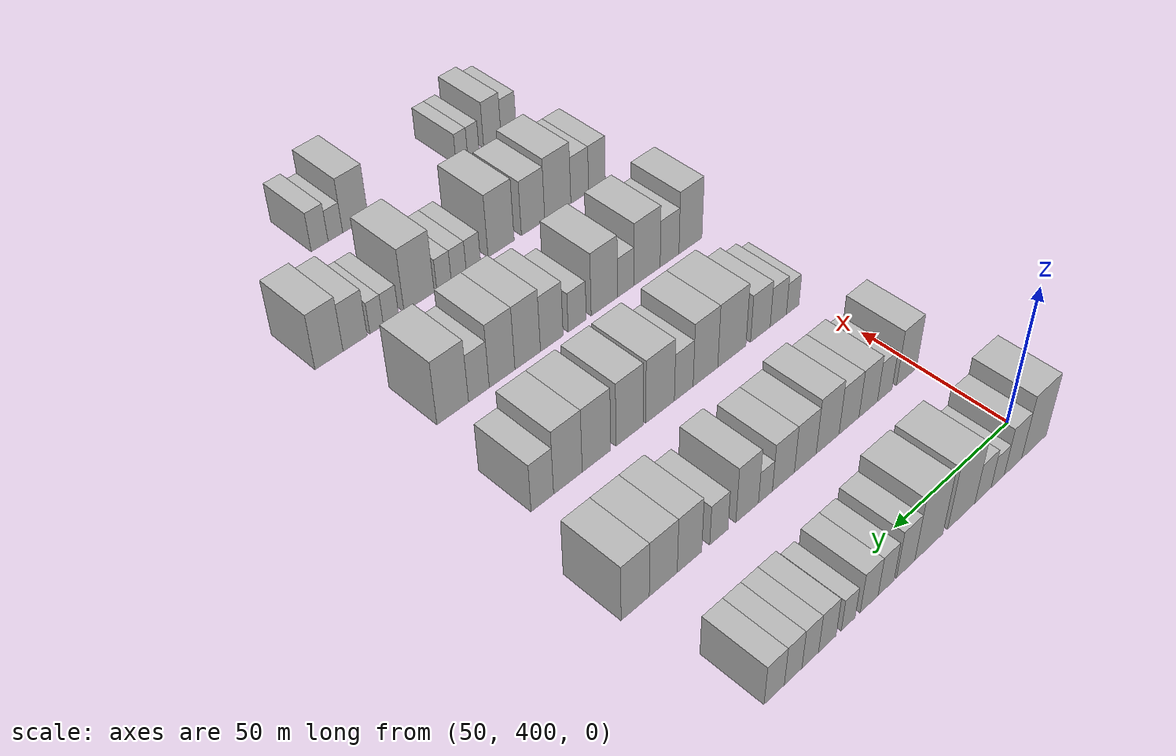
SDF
<sdf version="1.6">
 <world name="default">
  <model name="building_118">
   <static>1</static>
   <pose>50.0000 402.5049 0 0.000000 0.000000 0.000000</pose>
   <link name="link">
    <pose>0 0 12.00 0 0 0</pose>
    <collision name="collision"><geometry><box><size>20.0000 11.5535 24.0000</size></box></geometry></collision>
    <visual name="visual">
     <cast_shadows>0</cast_shadows>
     <geometry><box><size>20.0000 11.5535 24.0000</size></box></geometry>
     <material>
      <script>
       <uri>model://HANNAS_wall/materials/scripts</uri>
       <uri>model://HANNAS_wall/materials/textures</uri>
       <name>vrc/HANNAS_wall</name>
      </script>
     </material>
    </visual>
   </link>
  </model>
  <model name="building_119">
   <static>1</static>
   <pose>50.0000 412.2310 0 0.000000 0.000000 0.000000</pose>
   <link name="link">
    <pose>0 0 9.00 0 0 0</pose>
    <collision name="collision"><geometry><box><size>20.0000 7.8986 18.0000</size></box></geometry></collision>
    <visual name="visual">
     <cast_shadows>0</cast_shadows>
     <geometry><box><size>20.0000 7.8986 18.0000</size></box></geometry>
     <material>
      <script>
       <uri>model://HANNAS_wall/materials/scripts</uri>
       <uri>model://HANNAS_wall/materials/textures</uri>
       <name>vrc/HANNAS_wall</name>
      </script>
     </material>
    </visual>
   </link>
  </model>
  <model name="building_120">
   <static>1</static>
   <pose>50.0000 419.1569 0 0.000000 0.000000 0.000000</pose>
   <link name="link">
    <pose>0 0 6.00 0 0 0</pose>
    <collision name="collision"><geometry><box><size>20.0000 5.9532 12.0000</size></box></geometry></collision>
    <visual name="visual">
     <cast_shadows>0</cast_shadows>
     <geometry><box><size>20.0000 5.9532 12.0000</size></box></geometry>
     <material>
      <script>
       <uri>model://HANNAS_wall/materials/scripts</uri>
       <uri>model://HANNAS_wall/materials/textures</uri>
       <name>vrc/HANNAS_wall</name>
      </script>
     </material>
    </visual>
   </link>
  </model>
  <model name="building_121">
   <static>1</static>
   <pose>50.0000 425.7080 0 0.000000 0.000000 0.000000</pose>
   <link name="link">
    <pose>0 0 7.50 0 0 0</pose>
    <collision name="collision"><geometry><box><size>20.0000 7.1492 15.0000</size></box></geometry></collision>
    <visual name="visual">
     <cast_shadows>0</cast_shadows>
     <geometry><box><size>20.0000 7.1492 15.0000</size></box></geometry>
     <material>
      <script>
       <uri>model://HANNAS_wall/materials/scripts</uri>
       <uri>model://HANNAS_wall/materials/textures</uri>
       <name>vrc/HANNAS_wall</name>
      </script>
     </material>
    </visual>
   </link>
  </model>
  <model name="building_122">
   <static>1</static>
   <pose>50.0000 435.1717 0 0.000000 0.000000 0.000000</pose>
   <link name="link">
    <pose>0 0 12.00 0 0 0</pose>
    <collision name="collision"><geometry><box><size>20.0000 11.7782 24.0000</size></box></geometry></collision>
    <visual name="visual">
     <cast_shadows>0</cast_shadows>
     <geometry><box><size>20.0000 11.7782 24.0000</size></box></geometry>
     <material>
      <script>
       <uri>model://HANNAS_wall/materials/scripts</uri>
       <uri>model://HANNAS_wall/materials/textures</uri>
       <name>vrc/HANNAS_wall</name>
      </script>
     </material>
    </visual>
   </link>
  </model>
  <model name="building_123">
   <static>1</static>
   <pose>50.0000 448.9444 0 0.000000 0.000000 0.000000</pose>
   <link name="link">
    <pose>0 0 12.00 0 0 0</pose>
    <collision name="collision"><geometry><box><size>20.0000 11.7671 24.0000</size></box></geometry></collision>
    <visual name="visual">
     <cast_shadows>0</cast_shadows>
     <geometry><box><size>20.0000 11.7671 24.0000</size></box></geometry>
     <material>
      <script>
       <uri>model://HANNAS_wall/materials/scripts</uri>
       <uri>model://HANNAS_wall/materials/textures</uri>
       <name>vrc/HANNAS_wall</name>
      </script>
     </material>
    </visual>
   </link>
  </model>
  <model name="building_124">
   <static>1</static>
   <pose>50.0000 458.5396 0 0.000000 0.000000 0.000000</pose>
   <link name="link">
    <pose>0 0 9.00 0 0 0</pose>
    <collision name="collision"><geometry><box><size>20.0000 7.4233 18.0000</size></box></geometry></collision>
    <visual name="visual">
     <cast_shadows>0</cast_shadows>
     <geometry><box><size>20.0000 7.4233 18.0000</size></box></geometry>
     <material>
      <script>
       <uri>model://HANNAS_wall/materials/scripts</uri>
       <uri>model://HANNAS_wall/materials/textures</uri>
       <name>vrc/HANNAS_wall</name>
      </script>
     </material>
    </visual>
   </link>
  </model>
  <model name="building_125">
   <static>1</static>
   <pose>50.0000 466.4341 0 0.000000 0.000000 0.000000</pose>
   <link name="link">
    <pose>0 0 7.50 0 0 0</pose>
    <collision name="collision"><geometry><box><size>20.0000 6.3659 15.0000</size></box></geometry></collision>
    <visual name="visual">
     <cast_shadows>0</cast_shadows>
     <geometry><box><size>20.0000 6.3659 15.0000</size></box></geometry>
     <material>
      <script>
       <uri>model://HANNAS_wall/materials/scripts</uri>
       <uri>model://HANNAS_wall/materials/textures</uri>
       <name>vrc/HANNAS_wall</name>
      </script>
     </material>
    </visual>
   </link>
  </model>
  <model name="building_126">
   <static>1</static>
   <pose>50.0000 473.1034 0 0.000000 0.000000 0.000000</pose>
   <link name="link">
    <pose>0 0 7.50 0 0 0</pose>
    <collision name="collision"><geometry><box><size>20.0000 6.9726 15.0000</size></box></geometry></collision>
    <visual name="visual">
     <cast_shadows>0</cast_shadows>
     <geometry><box><size>20.0000 6.9726 15.0000</size></box></geometry>
     <material>
      <script>
       <uri>model://HANNAS_wall/materials/scripts</uri>
       <uri>model://HANNAS_wall/materials/textures</uri>
       <name>vrc/HANNAS_wall</name>
      </script>
     </material>
    </visual>
   </link>
  </model>
  <model name="building_127">
   <static>1</static>
   <pose>50.0000 481.2409 0 0.000000 0.000000 0.000000</pose>
   <link name="link">
    <pose>0 0 6.00 0 0 0</pose>
    <collision name="collision"><geometry><box><size>20.0000 5.3024 12.0000</size></box></geometry></collision>
    <visual name="visual">
     <cast_shadows>0</cast_shadows>
     <geometry><box><size>20.0000 5.3024 12.0000</size></box></geometry>
     <material>
      <script>
       <uri>model://HANNAS_wall/materials/scripts</uri>
       <uri>model://HANNAS_wall/materials/textures</uri>
       <name>vrc/HANNAS_wall</name>
      </script>
     </material>
    </visual>
   </link>
  </model>
  <model name="building_128">
   <static>1</static>
   <pose>50.0000 489.1842 0 0.000000 0.000000 0.000000</pose>
   <link name="link">
    <pose>0 0 7.50 0 0 0</pose>
    <collision name="collision"><geometry><box><size>20.0000 6.5843 15.0000</size></box></geometry></collision>
    <visual name="visual">
     <cast_shadows>0</cast_shadows>
     <geometry><box><size>20.0000 6.5843 15.0000</size></box></geometry>
     <material>
      <script>
       <uri>model://HANNAS_wall/materials/scripts</uri>
       <uri>model://HANNAS_wall/materials/textures</uri>
       <name>vrc/HANNAS_wall</name>
      </script>
     </material>
    </visual>
   </link>
  </model>
  <model name="building_129">
   <static>1</static>
   <pose>50.0000 495.5523 0 0.000000 0.000000 0.000000</pose>
   <link name="link">
    <pose>0 0 7.50 0 0 0</pose>
    <collision name="collision"><geometry><box><size>20.0000 6.1518 15.0000</size></box></geometry></collision>
    <visual name="visual">
     <cast_shadows>0</cast_shadows>
     <geometry><box><size>20.0000 6.1518 15.0000</size></box></geometry>
     <material>
      <script>
       <uri>model://HANNAS_wall/materials/scripts</uri>
       <uri>model://HANNAS_wall/materials/textures</uri>
       <name>vrc/HANNAS_wall</name>
      </script>
     </material>
    </visual>
   </link>
  </model>
  <model name="building_130">
   <static>1</static>
   <pose>50.0000 501.8149 0 0.000000 0.000000 0.000000</pose>
   <link name="link">
    <pose>0 0 7.50 0 0 0</pose>
    <collision name="collision"><geometry><box><size>20.0000 6.3734 15.0000</size></box></geometry></collision>
    <visual name="visual">
     <cast_shadows>0</cast_shadows>
     <geometry><box><size>20.0000 6.3734 15.0000</size></box></geometry>
     <material>
      <script>
       <uri>model://HANNAS_wall/materials/scripts</uri>
       <uri>model://HANNAS_wall/materials/textures</uri>
       <name>vrc/HANNAS_wall</name>
      </script>
     </material>
    </visual>
   </link>
  </model>
  <model name="building_131">
   <static>1</static>
   <pose>50.0000 508.6024 0 0.000000 0.000000 0.000000</pose>
   <link name="link">
    <pose>0 0 7.50 0 0 0</pose>
    <collision name="collision"><geometry><box><size>20.0000 7.2016 15.0000</size></box></geometry></collision>
    <visual name="visual">
     <cast_shadows>0</cast_shadows>
     <geometry><box><size>20.0000 7.2016 15.0000</size></box></geometry>
     <material>
      <script>
       <uri>model://HANNAS_wall/materials/scripts</uri>
       <uri>model://HANNAS_wall/materials/textures</uri>
       <name>vrc/HANNAS_wall</name>
      </script>
     </material>
    </visual>
   </link>
  </model>
  <model name="building_254">
   <static>1</static>
   <pose>90.0000 405.3407 0 0.000000 0.000000 0.000000</pose>
   <link name="link">
    <pose>0 0 10.50 0 0 0</pose>
    <collision name="collision"><geometry><box><size>20.0000 9.0684 21.0000</size></box></geometry></collision>
    <visual name="visual">
     <cast_shadows>0</cast_shadows>
     <geometry><box><size>20.0000 9.0684 21.0000</size></box></geometry>
     <material>
      <script>
       <uri>model://HANNAS_wall/materials/scripts</uri>
       <uri>model://HANNAS_wall/materials/textures</uri>
       <name>vrc/HANNAS_wall</name>
      </script>
     </material>
    </visual>
   </link>
  </model>
  <model name="building_255">
   <static>1</static>
   <pose>90.0000 415.1380 0 0.000000 0.000000 0.000000</pose>
   <link name="link">
    <pose>0 0 7.50 0 0 0</pose>
    <collision name="collision"><geometry><box><size>20.0000 6.5263 15.0000</size></box></geometry></collision>
    <visual name="visual">
     <cast_shadows>0</cast_shadows>
     <geometry><box><size>20.0000 6.5263 15.0000</size></box></geometry>
     <material>
      <script>
       <uri>model://HANNAS_wall/materials/scripts</uri>
       <uri>model://HANNAS_wall/materials/textures</uri>
       <name>vrc/HANNAS_wall</name>
      </script>
     </material>
    </visual>
   </link>
  </model>
  <model name="building_256">
   <static>1</static>
   <pose>90.0000 422.4378 0 0.000000 0.000000 0.000000</pose>
   <link name="link">
    <pose>0 0 9.00 0 0 0</pose>
    <collision name="collision"><geometry><box><size>20.0000 8.0733 18.0000</size></box></geometry></collision>
    <visual name="visual">
     <cast_shadows>0</cast_shadows>
     <geometry><box><size>20.0000 8.0733 18.0000</size></box></geometry>
     <material>
      <script>
       <uri>model://HANNAS_wall/materials/scripts</uri>
       <uri>model://HANNAS_wall/materials/textures</uri>
       <name>vrc/HANNAS_wall</name>
      </script>
     </material>
    </visual>
   </link>
  </model>
  <model name="building_257">
   <static>1</static>
   <pose>90.0000 430.7644 0 0.000000 0.000000 0.000000</pose>
   <link name="link">
    <pose>0 0 9.00 0 0 0</pose>
    <collision name="collision"><geometry><box><size>20.0000 8.5798 18.0000</size></box></geometry></collision>
    <visual name="visual">
     <cast_shadows>0</cast_shadows>
     <geometry><box><size>20.0000 8.5798 18.0000</size></box></geometry>
     <material>
      <script>
       <uri>model://HANNAS_wall/materials/scripts</uri>
       <uri>model://HANNAS_wall/materials/textures</uri>
       <name>vrc/HANNAS_wall</name>
      </script>
     </material>
    </visual>
   </link>
  </model>
  <model name="building_258">
   <static>1</static>
   <pose>90.0000 439.8558 0 0.000000 0.000000 0.000000</pose>
   <link name="link">
    <pose>0 0 10.50 0 0 0</pose>
    <collision name="collision"><geometry><box><size>20.0000 9.6030 21.0000</size></box></geometry></collision>
    <visual name="visual">
     <cast_shadows>0</cast_shadows>
     <geometry><box><size>20.0000 9.6030 21.0000</size></box></geometry>
     <material>
      <script>
       <uri>model://HANNAS_wall/materials/scripts</uri>
       <uri>model://HANNAS_wall/materials/textures</uri>
       <name>vrc/HANNAS_wall</name>
      </script>
     </material>
    </visual>
   </link>
  </model>
  <model name="building_259">
   <static>1</static>
   <pose>90.0000 449.1260 0 0.000000 0.000000 0.000000</pose>
   <link name="link">
    <pose>0 0 9.00 0 0 0</pose>
    <collision name="collision"><geometry><box><size>20.0000 8.9374 18.0000</size></box></geometry></collision>
    <visual name="visual">
     <cast_shadows>0</cast_shadows>
     <geometry><box><size>20.0000 8.9374 18.0000</size></box></geometry>
     <material>
      <script>
       <uri>model://HANNAS_wall/materials/scripts</uri>
       <uri>model://HANNAS_wall/materials/textures</uri>
       <name>vrc/HANNAS_wall</name>
      </script>
     </material>
    </visual>
   </link>
  </model>
  <model name="building_260">
   <static>1</static>
   <pose>90.0000 458.0168 0 0.000000 0.000000 0.000000</pose>
   <link name="link">
    <pose>0 0 9.00 0 0 0</pose>
    <collision name="collision"><geometry><box><size>20.0000 8.8444 18.0000</size></box></geometry></collision>
    <visual name="visual">
     <cast_shadows>0</cast_shadows>
     <geometry><box><size>20.0000 8.8444 18.0000</size></box></geometry>
     <material>
      <script>
       <uri>model://HANNAS_wall/materials/scripts</uri>
       <uri>model://HANNAS_wall/materials/textures</uri>
       <name>vrc/HANNAS_wall</name>
      </script>
     </material>
    </visual>
   </link>
  </model>
  <model name="building_261">
   <static>1</static>
   <pose>90.0000 465.1957 0 0.000000 0.000000 0.000000</pose>
   <link name="link">
    <pose>0 0 6.00 0 0 0</pose>
    <collision name="collision"><geometry><box><size>20.0000 5.5133 12.0000</size></box></geometry></collision>
    <visual name="visual">
     <cast_shadows>0</cast_shadows>
     <geometry><box><size>20.0000 5.5133 12.0000</size></box></geometry>
     <material>
      <script>
       <uri>model://HANNAS_wall/materials/scripts</uri>
       <uri>model://HANNAS_wall/materials/textures</uri>
       <name>vrc/HANNAS_wall</name>
      </script>
     </material>
    </visual>
   </link>
  </model>
  <model name="building_262">
   <static>1</static>
   <pose>90.0000 472.3286 0 0.000000 0.000000 0.000000</pose>
   <link name="link">
    <pose>0 0 10.50 0 0 0</pose>
    <collision name="collision"><geometry><box><size>20.0000 8.7526 21.0000</size></box></geometry></collision>
    <visual name="visual">
     <cast_shadows>0</cast_shadows>
     <geometry><box><size>20.0000 8.7526 21.0000</size></box></geometry>
     <material>
      <script>
       <uri>model://HANNAS_wall/materials/scripts</uri>
       <uri>model://HANNAS_wall/materials/textures</uri>
       <name>vrc/HANNAS_wall</name>
      </script>
     </material>
    </visual>
   </link>
  </model>
  <model name="building_263">
   <static>1</static>
   <pose>90.0000 483.1528 0 0.000000 0.000000 0.000000</pose>
   <link name="link">
    <pose>0 0 7.50 0 0 0</pose>
    <collision name="collision"><geometry><box><size>20.0000 6.8958 15.0000</size></box></geometry></collision>
    <visual name="visual">
     <cast_shadows>0</cast_shadows>
     <geometry><box><size>20.0000 6.8958 15.0000</size></box></geometry>
     <material>
      <script>
       <uri>model://HANNAS_wall/materials/scripts</uri>
       <uri>model://HANNAS_wall/materials/textures</uri>
       <name>vrc/HANNAS_wall</name>
      </script>
     </material>
    </visual>
   </link>
  </model>
  <model name="building_264">
   <static>1</static>
   <pose>90.0000 494.0964 0 0.000000 0.000000 0.000000</pose>
   <link name="link">
    <pose>0 0 10.50 0 0 0</pose>
    <collision name="collision"><geometry><box><size>20.0000 8.9914 21.0000</size></box></geometry></collision>
    <visual name="visual">
     <cast_shadows>0</cast_shadows>
     <geometry><box><size>20.0000 8.9914 21.0000</size></box></geometry>
     <material>
      <script>
       <uri>model://HANNAS_wall/materials/scripts</uri>
       <uri>model://HANNAS_wall/materials/textures</uri>
       <name>vrc/HANNAS_wall</name>
      </script>
     </material>
    </visual>
   </link>
  </model>
  <model name="building_265">
   <static>1</static>
   <pose>90.0000 503.6008 0 0.000000 0.000000 0.000000</pose>
   <link name="link">
    <pose>0 0 10.50 0 0 0</pose>
    <collision name="collision"><geometry><box><size>20.0000 10.0174 21.0000</size></box></geometry></collision>
    <visual name="visual">
     <cast_shadows>0</cast_shadows>
     <geometry><box><size>20.0000 10.0174 21.0000</size></box></geometry>
     <material>
      <script>
       <uri>model://HANNAS_wall/materials/scripts</uri>
       <uri>model://HANNAS_wall/materials/textures</uri>
       <name>vrc/HANNAS_wall</name>
      </script>
     </material>
    </visual>
   </link>
  </model>
  <model name="building_266">
   <static>1</static>
   <pose>90.0000 513.5256 0 0.000000 0.000000 0.000000</pose>
   <link name="link">
    <pose>0 0 10.50 0 0 0</pose>
    <collision name="collision"><geometry><box><size>20.0000 9.8323 21.0000</size></box></geometry></collision>
    <visual name="visual">
     <cast_shadows>0</cast_shadows>
     <geometry><box><size>20.0000 9.8323 21.0000</size></box></geometry>
     <material>
      <script>
       <uri>model://HANNAS_wall/materials/scripts</uri>
       <uri>model://HANNAS_wall/materials/textures</uri>
       <name>vrc/HANNAS_wall</name>
      </script>
     </material>
    </visual>
   </link>
  </model>
  <model name="building_392">
   <static>1</static>
   <pose>130.0000 406.6266 0 0.000000 0.000000 0.000000</pose>
   <link name="link">
    <pose>0 0 6.00 0 0 0</pose>
    <collision name="collision"><geometry><box><size>20.0000 5.5892 12.0000</size></box></geometry></collision>
    <visual name="visual">
     <cast_shadows>0</cast_shadows>
     <geometry><box><size>20.0000 5.5892 12.0000</size></box></geometry>
     <material>
      <script>
       <uri>model://HANNAS_wall/materials/scripts</uri>
       <uri>model://HANNAS_wall/materials/textures</uri>
       <name>vrc/HANNAS_wall</name>
      </script>
     </material>
    </visual>
   </link>
  </model>
  <model name="building_393">
   <static>1</static>
   <pose>130.0000 412.9914 0 0.000000 0.000000 0.000000</pose>
   <link name="link">
    <pose>0 0 7.50 0 0 0</pose>
    <collision name="collision"><geometry><box><size>20.0000 7.1404 15.0000</size></box></geometry></collision>
    <visual name="visual">
     <cast_shadows>0</cast_shadows>
     <geometry><box><size>20.0000 7.1404 15.0000</size></box></geometry>
     <material>
      <script>
       <uri>model://HANNAS_wall/materials/scripts</uri>
       <uri>model://HANNAS_wall/materials/textures</uri>
       <name>vrc/HANNAS_wall</name>
      </script>
     </material>
    </visual>
   </link>
  </model>
  <model name="building_394">
   <static>1</static>
   <pose>130.0000 420.8222 0 0.000000 0.000000 0.000000</pose>
   <link name="link">
    <pose>0 0 9.00 0 0 0</pose>
    <collision name="collision"><geometry><box><size>20.0000 8.5211 18.0000</size></box></geometry></collision>
    <visual name="visual">
     <cast_shadows>0</cast_shadows>
     <geometry><box><size>20.0000 8.5211 18.0000</size></box></geometry>
     <material>
      <script>
       <uri>model://HANNAS_wall/materials/scripts</uri>
       <uri>model://HANNAS_wall/materials/textures</uri>
       <name>vrc/HANNAS_wall</name>
      </script>
     </material>
    </visual>
   </link>
  </model>
  <model name="building_395">
   <static>1</static>
   <pose>130.0000 433.0296 0 0.000000 0.000000 0.000000</pose>
   <link name="link">
    <pose>0 0 12.00 0 0 0</pose>
    <collision name="collision"><geometry><box><size>20.0000 11.8937 24.0000</size></box></geometry></collision>
    <visual name="visual">
     <cast_shadows>0</cast_shadows>
     <geometry><box><size>20.0000 11.8937 24.0000</size></box></geometry>
     <material>
      <script>
       <uri>model://HANNAS_wall/materials/scripts</uri>
       <uri>model://HANNAS_wall/materials/textures</uri>
       <name>vrc/HANNAS_wall</name>
      </script>
     </material>
    </visual>
   </link>
  </model>
  <model name="building_396">
   <static>1</static>
   <pose>130.0000 444.0582 0 0.000000 0.000000 0.000000</pose>
   <link name="link">
    <pose>0 0 12.00 0 0 0</pose>
    <collision name="collision"><geometry><box><size>20.0000 10.1637 24.0000</size></box></geometry></collision>
    <visual name="visual">
     <cast_shadows>0</cast_shadows>
     <geometry><box><size>20.0000 10.1637 24.0000</size></box></geometry>
     <material>
      <script>
       <uri>model://HANNAS_wall/materials/scripts</uri>
       <uri>model://HANNAS_wall/materials/textures</uri>
       <name>vrc/HANNAS_wall</name>
      </script>
     </material>
    </visual>
   </link>
  </model>
  <model name="building_397">
   <static>1</static>
   <pose>130.0000 452.9216 0 0.000000 0.000000 0.000000</pose>
   <link name="link">
    <pose>0 0 9.00 0 0 0</pose>
    <collision name="collision"><geometry><box><size>20.0000 7.5631 18.0000</size></box></geometry></collision>
    <visual name="visual">
     <cast_shadows>0</cast_shadows>
     <geometry><box><size>20.0000 7.5631 18.0000</size></box></geometry>
     <material>
      <script>
       <uri>model://HANNAS_wall/materials/scripts</uri>
       <uri>model://HANNAS_wall/materials/textures</uri>
       <name>vrc/HANNAS_wall</name>
      </script>
     </material>
    </visual>
   </link>
  </model>
  <model name="building_398">
   <static>1</static>
   <pose>130.0000 462.3562 0 0.000000 0.000000 0.000000</pose>
   <link name="link">
    <pose>0 0 12.00 0 0 0</pose>
    <collision name="collision"><geometry><box><size>20.0000 11.3060 24.0000</size></box></geometry></collision>
    <visual name="visual">
     <cast_shadows>0</cast_shadows>
     <geometry><box><size>20.0000 11.3060 24.0000</size></box></geometry>
     <material>
      <script>
       <uri>model://HANNAS_wall/materials/scripts</uri>
       <uri>model://HANNAS_wall/materials/textures</uri>
       <name>vrc/HANNAS_wall</name>
      </script>
     </material>
    </visual>
   </link>
  </model>
  <model name="building_399">
   <static>1</static>
   <pose>130.0000 474.2204 0 0.000000 0.000000 0.000000</pose>
   <link name="link">
    <pose>0 0 12.00 0 0 0</pose>
    <collision name="collision"><geometry><box><size>20.0000 10.4224 24.0000</size></box></geometry></collision>
    <visual name="visual">
     <cast_shadows>0</cast_shadows>
     <geometry><box><size>20.0000 10.4224 24.0000</size></box></geometry>
     <material>
      <script>
       <uri>model://HANNAS_wall/materials/scripts</uri>
       <uri>model://HANNAS_wall/materials/textures</uri>
       <name>vrc/HANNAS_wall</name>
      </script>
     </material>
    </visual>
   </link>
  </model>
  <model name="building_400">
   <static>1</static>
   <pose>130.0000 486.7263 0 0.000000 0.000000 0.000000</pose>
   <link name="link">
    <pose>0 0 12.00 0 0 0</pose>
    <collision name="collision"><geometry><box><size>20.0000 10.5895 24.0000</size></box></geometry></collision>
    <visual name="visual">
     <cast_shadows>0</cast_shadows>
     <geometry><box><size>20.0000 10.5895 24.0000</size></box></geometry>
     <material>
      <script>
       <uri>model://HANNAS_wall/materials/scripts</uri>
       <uri>model://HANNAS_wall/materials/textures</uri>
       <name>vrc/HANNAS_wall</name>
      </script>
     </material>
    </visual>
   </link>
  </model>
  <model name="building_401">
   <static>1</static>
   <pose>130.0000 497.2283 0 0.000000 0.000000 0.000000</pose>
   <link name="link">
    <pose>0 0 12.00 0 0 0</pose>
    <collision name="collision"><geometry><box><size>20.0000 10.4146 24.0000</size></box></geometry></collision>
    <visual name="visual">
     <cast_shadows>0</cast_shadows>
     <geometry><box><size>20.0000 10.4146 24.0000</size></box></geometry>
     <material>
      <script>
       <uri>model://HANNAS_wall/materials/scripts</uri>
       <uri>model://HANNAS_wall/materials/textures</uri>
       <name>vrc/HANNAS_wall</name>
      </script>
     </material>
    </visual>
   </link>
  </model>
  <model name="building_402">
   <static>1</static>
   <pose>130.0000 506.4365 0 0.000000 0.000000 0.000000</pose>
   <link name="link">
    <pose>0 0 9.00 0 0 0</pose>
    <collision name="collision"><geometry><box><size>20.0000 8.0019 18.0000</size></box></geometry></collision>
    <visual name="visual">
     <cast_shadows>0</cast_shadows>
     <geometry><box><size>20.0000 8.0019 18.0000</size></box></geometry>
     <material>
      <script>
       <uri>model://HANNAS_wall/materials/scripts</uri>
       <uri>model://HANNAS_wall/materials/textures</uri>
       <name>vrc/HANNAS_wall</name>
      </script>
     </material>
    </visual>
   </link>
  </model>
  <model name="building_530">
   <static>1</static>
   <pose>170.0000 406.6631 0 0.000000 0.000000 0.000000</pose>
   <link name="link">
    <pose>0 0 12.00 0 0 0</pose>
    <collision name="collision"><geometry><box><size>20.0000 10.2220 24.0000</size></box></geometry></collision>
    <visual name="visual">
     <cast_shadows>0</cast_shadows>
     <geometry><box><size>20.0000 10.2220 24.0000</size></box></geometry>
     <material>
      <script>
       <uri>model://HANNAS_wall/materials/scripts</uri>
       <uri>model://HANNAS_wall/materials/textures</uri>
       <name>vrc/HANNAS_wall</name>
      </script>
     </material>
    </visual>
   </link>
  </model>
  <model name="building_531">
   <static>1</static>
   <pose>170.0000 415.8675 0 0.000000 0.000000 0.000000</pose>
   <link name="link">
    <pose>0 0 9.00 0 0 0</pose>
    <collision name="collision"><geometry><box><size>20.0000 8.1868 18.0000</size></box></geometry></collision>
    <visual name="visual">
     <cast_shadows>0</cast_shadows>
     <geometry><box><size>20.0000 8.1868 18.0000</size></box></geometry>
     <material>
      <script>
       <uri>model://HANNAS_wall/materials/scripts</uri>
       <uri>model://HANNAS_wall/materials/textures</uri>
       <name>vrc/HANNAS_wall</name>
      </script>
     </material>
    </visual>
   </link>
  </model>
  <model name="building_532">
   <static>1</static>
   <pose>170.0000 425.5080 0 0.000000 0.000000 0.000000</pose>
   <link name="link">
    <pose>0 0 12.00 0 0 0</pose>
    <collision name="collision"><geometry><box><size>20.0000 11.0941 24.0000</size></box></geometry></collision>
    <visual name="visual">
     <cast_shadows>0</cast_shadows>
     <geometry><box><size>20.0000 11.0941 24.0000</size></box></geometry>
     <material>
      <script>
       <uri>model://HANNAS_wall/materials/scripts</uri>
       <uri>model://HANNAS_wall/materials/textures</uri>
       <name>vrc/HANNAS_wall</name>
      </script>
     </material>
    </visual>
   </link>
  </model>
  <model name="building_533">
   <static>1</static>
   <pose>170.0000 434.5337 0 0.000000 0.000000 0.000000</pose>
   <link name="link">
    <pose>0 0 7.50 0 0 0</pose>
    <collision name="collision"><geometry><box><size>20.0000 6.9574 15.0000</size></box></geometry></collision>
    <visual name="visual">
     <cast_shadows>0</cast_shadows>
     <geometry><box><size>20.0000 6.9574 15.0000</size></box></geometry>
     <material>
      <script>
       <uri>model://HANNAS_wall/materials/scripts</uri>
       <uri>model://HANNAS_wall/materials/textures</uri>
       <name>vrc/HANNAS_wall</name>
      </script>
     </material>
    </visual>
   </link>
  </model>
  <model name="building_534">
   <static>1</static>
   <pose>170.0000 443.4243 0 0.000000 0.000000 0.000000</pose>
   <link name="link">
    <pose>0 0 12.00 0 0 0</pose>
    <collision name="collision"><geometry><box><size>20.0000 10.8237 24.0000</size></box></geometry></collision>
    <visual name="visual">
     <cast_shadows>0</cast_shadows>
     <geometry><box><size>20.0000 10.8237 24.0000</size></box></geometry>
     <material>
      <script>
       <uri>model://HANNAS_wall/materials/scripts</uri>
       <uri>model://HANNAS_wall/materials/textures</uri>
       <name>vrc/HANNAS_wall</name>
      </script>
     </material>
    </visual>
   </link>
  </model>
  <model name="building_535">
   <static>1</static>
   <pose>170.0000 454.4615 0 0.000000 0.000000 0.000000</pose>
   <link name="link">
    <pose>0 0 7.50 0 0 0</pose>
    <collision name="collision"><geometry><box><size>20.0000 7.2507 15.0000</size></box></geometry></collision>
    <visual name="visual">
     <cast_shadows>0</cast_shadows>
     <geometry><box><size>20.0000 7.2507 15.0000</size></box></geometry>
     <material>
      <script>
       <uri>model://HANNAS_wall/materials/scripts</uri>
       <uri>model://HANNAS_wall/materials/textures</uri>
       <name>vrc/HANNAS_wall</name>
      </script>
     </material>
    </visual>
   </link>
  </model>
  <model name="building_536">
   <static>1</static>
   <pose>170.0000 464.5316 0 0.000000 0.000000 0.000000</pose>
   <link name="link">
    <pose>0 0 10.50 0 0 0</pose>
    <collision name="collision"><geometry><box><size>20.0000 8.8896 21.0000</size></box></geometry></collision>
    <visual name="visual">
     <cast_shadows>0</cast_shadows>
     <geometry><box><size>20.0000 8.8896 21.0000</size></box></geometry>
     <material>
      <script>
       <uri>model://HANNAS_wall/materials/scripts</uri>
       <uri>model://HANNAS_wall/materials/textures</uri>
       <name>vrc/HANNAS_wall</name>
      </script>
     </material>
    </visual>
   </link>
  </model>
  <model name="building_537">
   <static>1</static>
   <pose>170.0000 473.8697 0 0.000000 0.000000 0.000000</pose>
   <link name="link">
    <pose>0 0 12.00 0 0 0</pose>
    <collision name="collision"><geometry><box><size>20.0000 9.7866 24.0000</size></box></geometry></collision>
    <visual name="visual">
     <cast_shadows>0</cast_shadows>
     <geometry><box><size>20.0000 9.7866 24.0000</size></box></geometry>
     <material>
      <script>
       <uri>model://HANNAS_wall/materials/scripts</uri>
       <uri>model://HANNAS_wall/materials/textures</uri>
       <name>vrc/HANNAS_wall</name>
      </script>
     </material>
    </visual>
   </link>
  </model>
  <model name="building_538">
   <static>1</static>
   <pose>170.0000 483.5857 0 0.000000 0.000000 0.000000</pose>
   <link name="link">
    <pose>0 0 12.00 0 0 0</pose>
    <collision name="collision"><geometry><box><size>20.0000 9.6454 24.0000</size></box></geometry></collision>
    <visual name="visual">
     <cast_shadows>0</cast_shadows>
     <geometry><box><size>20.0000 9.6454 24.0000</size></box></geometry>
     <material>
      <script>
       <uri>model://HANNAS_wall/materials/scripts</uri>
       <uri>model://HANNAS_wall/materials/textures</uri>
       <name>vrc/HANNAS_wall</name>
      </script>
     </material>
    </visual>
   </link>
  </model>
  <model name="building_539">
   <static>1</static>
   <pose>170.0000 492.2128 0 0.000000 0.000000 0.000000</pose>
   <link name="link">
    <pose>0 0 9.00 0 0 0</pose>
    <collision name="collision"><geometry><box><size>20.0000 7.6087 18.0000</size></box></geometry></collision>
    <visual name="visual">
     <cast_shadows>0</cast_shadows>
     <geometry><box><size>20.0000 7.6087 18.0000</size></box></geometry>
     <material>
      <script>
       <uri>model://HANNAS_wall/materials/scripts</uri>
       <uri>model://HANNAS_wall/materials/textures</uri>
       <name>vrc/HANNAS_wall</name>
      </script>
     </material>
    </visual>
   </link>
  </model>
  <model name="building_540">
   <static>1</static>
   <pose>170.0000 501.7418 0 0.000000 0.000000 0.000000</pose>
   <link name="link">
    <pose>0 0 12.00 0 0 0</pose>
    <collision name="collision"><geometry><box><size>20.0000 11.4493 24.0000</size></box></geometry></collision>
    <visual name="visual">
     <cast_shadows>0</cast_shadows>
     <geometry><box><size>20.0000 11.4493 24.0000</size></box></geometry>
     <material>
      <script>
       <uri>model://HANNAS_wall/materials/scripts</uri>
       <uri>model://HANNAS_wall/materials/textures</uri>
       <name>vrc/HANNAS_wall</name>
      </script>
     </material>
    </visual>
   </link>
  </model>
  <model name="building_671">
   <static>1</static>
   <pose>210.0000 406.3719 0 0.000000 0.000000 0.000000</pose>
   <link name="link">
    <pose>0 0 9.00 0 0 0</pose>
    <collision name="collision"><geometry><box><size>20.0000 7.3738 18.0000</size></box></geometry></collision>
    <visual name="visual">
     <cast_shadows>0</cast_shadows>
     <geometry><box><size>20.0000 7.3738 18.0000</size></box></geometry>
     <material>
      <script>
       <uri>model://HANNAS_wall/materials/scripts</uri>
       <uri>model://HANNAS_wall/materials/textures</uri>
       <name>vrc/HANNAS_wall</name>
      </script>
     </material>
    </visual>
   </link>
  </model>
  <model name="building_672">
   <static>1</static>
   <pose>210.0000 413.9462 0 0.000000 0.000000 0.000000</pose>
   <link name="link">
    <pose>0 0 9.00 0 0 0</pose>
    <collision name="collision"><geometry><box><size>20.0000 7.7746 18.0000</size></box></geometry></collision>
    <visual name="visual">
     <cast_shadows>0</cast_shadows>
     <geometry><box><size>20.0000 7.7746 18.0000</size></box></geometry>
     <material>
      <script>
       <uri>model://HANNAS_wall/materials/scripts</uri>
       <uri>model://HANNAS_wall/materials/textures</uri>
       <name>vrc/HANNAS_wall</name>
      </script>
     </material>
    </visual>
   </link>
  </model>
  <model name="building_673">
   <static>1</static>
   <pose>210.0000 423.4200 0 0.000000 0.000000 0.000000</pose>
   <link name="link">
    <pose>0 0 12.00 0 0 0</pose>
    <collision name="collision"><geometry><box><size>20.0000 11.1731 24.0000</size></box></geometry></collision>
    <visual name="visual">
     <cast_shadows>0</cast_shadows>
     <geometry><box><size>20.0000 11.1731 24.0000</size></box></geometry>
     <material>
      <script>
       <uri>model://HANNAS_wall/materials/scripts</uri>
       <uri>model://HANNAS_wall/materials/textures</uri>
       <name>vrc/HANNAS_wall</name>
      </script>
     </material>
    </visual>
   </link>
  </model>
  <model name="building_674">
   <static>1</static>
   <pose>210.0000 433.9128 0 0.000000 0.000000 0.000000</pose>
   <link name="link">
    <pose>0 0 10.50 0 0 0</pose>
    <collision name="collision"><geometry><box><size>20.0000 9.8125 21.0000</size></box></geometry></collision>
    <visual name="visual">
     <cast_shadows>0</cast_shadows>
     <geometry><box><size>20.0000 9.8125 21.0000</size></box></geometry>
     <material>
      <script>
       <uri>model://HANNAS_wall/materials/scripts</uri>
       <uri>model://HANNAS_wall/materials/textures</uri>
       <name>vrc/HANNAS_wall</name>
      </script>
     </material>
    </visual>
   </link>
  </model>
  <model name="building_675">
   <static>1</static>
   <pose>210.0000 447.1400 0 0.000000 0.000000 0.000000</pose>
   <link name="link">
    <pose>0 0 12.00 0 0 0</pose>
    <collision name="collision"><geometry><box><size>20.0000 10.6417 24.0000</size></box></geometry></collision>
    <visual name="visual">
     <cast_shadows>0</cast_shadows>
     <geometry><box><size>20.0000 10.6417 24.0000</size></box></geometry>
     <material>
      <script>
       <uri>model://HANNAS_wall/materials/scripts</uri>
       <uri>model://HANNAS_wall/materials/textures</uri>
       <name>vrc/HANNAS_wall</name>
      </script>
     </material>
    </visual>
   </link>
  </model>
  <model name="building_676">
   <static>1</static>
   <pose>210.0000 458.3235 0 0.000000 0.000000 0.000000</pose>
   <link name="link">
    <pose>0 0 6.00 0 0 0</pose>
    <collision name="collision"><geometry><box><size>20.0000 5.7253 12.0000</size></box></geometry></collision>
    <visual name="visual">
     <cast_shadows>0</cast_shadows>
     <geometry><box><size>20.0000 5.7253 12.0000</size></box></geometry>
     <material>
      <script>
       <uri>model://HANNAS_wall/materials/scripts</uri>
       <uri>model://HANNAS_wall/materials/textures</uri>
       <name>vrc/HANNAS_wall</name>
      </script>
     </material>
    </visual>
   </link>
  </model>
  <model name="building_677">
   <static>1</static>
   <pose>210.0000 464.1206 0 0.000000 0.000000 0.000000</pose>
   <link name="link">
    <pose>0 0 6.00 0 0 0</pose>
    <collision name="collision"><geometry><box><size>20.0000 5.8690 12.0000</size></box></geometry></collision>
    <visual name="visual">
     <cast_shadows>0</cast_shadows>
     <geometry><box><size>20.0000 5.8690 12.0000</size></box></geometry>
     <material>
      <script>
       <uri>model://HANNAS_wall/materials/scripts</uri>
       <uri>model://HANNAS_wall/materials/textures</uri>
       <name>vrc/HANNAS_wall</name>
      </script>
     </material>
    </visual>
   </link>
  </model>
  <model name="building_678">
   <static>1</static>
   <pose>210.0000 469.8627 0 0.000000 0.000000 0.000000</pose>
   <link name="link">
    <pose>0 0 6.00 0 0 0</pose>
    <collision name="collision"><geometry><box><size>20.0000 5.6151 12.0000</size></box></geometry></collision>
    <visual name="visual">
     <cast_shadows>0</cast_shadows>
     <geometry><box><size>20.0000 5.6151 12.0000</size></box></geometry>
     <material>
      <script>
       <uri>model://HANNAS_wall/materials/scripts</uri>
       <uri>model://HANNAS_wall/materials/textures</uri>
       <name>vrc/HANNAS_wall</name>
      </script>
     </material>
    </visual>
   </link>
  </model>
  <model name="building_679">
   <static>1</static>
   <pose>210.0000 479.4257 0 0.000000 0.000000 0.000000</pose>
   <link name="link">
    <pose>0 0 12.00 0 0 0</pose>
    <collision name="collision"><geometry><box><size>20.0000 11.5108 24.0000</size></box></geometry></collision>
    <visual name="visual">
     <cast_shadows>0</cast_shadows>
     <geometry><box><size>20.0000 11.5108 24.0000</size></box></geometry>
     <material>
      <script>
       <uri>model://HANNAS_wall/materials/scripts</uri>
       <uri>model://HANNAS_wall/materials/textures</uri>
       <name>vrc/HANNAS_wall</name>
      </script>
     </material>
    </visual>
   </link>
  </model>
  <model name="building_680">
   <static>1</static>
   <pose>210.0000 490.0211 0 0.000000 0.000000 0.000000</pose>
   <link name="link">
    <pose>0 0 6.00 0 0 0</pose>
    <collision name="collision"><geometry><box><size>20.0000 5.6801 12.0000</size></box></geometry></collision>
    <visual name="visual">
     <cast_shadows>0</cast_shadows>
     <geometry><box><size>20.0000 5.6801 12.0000</size></box></geometry>
     <material>
      <script>
       <uri>model://HANNAS_wall/materials/scripts</uri>
       <uri>model://HANNAS_wall/materials/textures</uri>
       <name>vrc/HANNAS_wall</name>
      </script>
     </material>
    </visual>
   </link>
  </model>
  <model name="building_681">
   <static>1</static>
   <pose>210.0000 495.3412 0 0.000000 0.000000 0.000000</pose>
   <link name="link">
    <pose>0 0 6.00 0 0 0</pose>
    <collision name="collision"><geometry><box><size>20.0000 4.9601 12.0000</size></box></geometry></collision>
    <visual name="visual">
     <cast_shadows>0</cast_shadows>
     <geometry><box><size>20.0000 4.9601 12.0000</size></box></geometry>
     <material>
      <script>
       <uri>model://HANNAS_wall/materials/scripts</uri>
       <uri>model://HANNAS_wall/materials/textures</uri>
       <name>vrc/HANNAS_wall</name>
      </script>
     </material>
    </visual>
   </link>
  </model>
  <model name="building_682">
   <static>1</static>
   <pose>210.0000 503.1607 0 0.000000 0.000000 0.000000</pose>
   <link name="link">
    <pose>0 0 9.00 0 0 0</pose>
    <collision name="collision"><geometry><box><size>20.0000 8.6789 18.0000</size></box></geometry></collision>
    <visual name="visual">
     <cast_shadows>0</cast_shadows>
     <geometry><box><size>20.0000 8.6789 18.0000</size></box></geometry>
     <material>
      <script>
       <uri>model://HANNAS_wall/materials/scripts</uri>
       <uri>model://HANNAS_wall/materials/textures</uri>
       <name>vrc/HANNAS_wall</name>
      </script>
     </material>
    </visual>
   </link>
  </model>
  <model name="building_683">
   <static>1</static>
   <pose>210.0000 512.4741 0 0.000000 0.000000 0.000000</pose>
   <link name="link">
    <pose>0 0 10.50 0 0 0</pose>
    <collision name="collision"><geometry><box><size>20.0000 9.9480 21.0000</size></box></geometry></collision>
    <visual name="visual">
     <cast_shadows>0</cast_shadows>
     <geometry><box><size>20.0000 9.9480 21.0000</size></box></geometry>
     <material>
      <script>
       <uri>model://HANNAS_wall/materials/scripts</uri>
       <uri>model://HANNAS_wall/materials/textures</uri>
       <name>vrc/HANNAS_wall</name>
      </script>
     </material>
    </visual>
   </link>
  </model>
  <model name="building_808">
   <static>1</static>
   <pose>250.0000 407.0286 0 0.000000 0.000000 0.000000</pose>
   <link name="link">
    <pose>0 0 7.50 0 0 0</pose>
    <collision name="collision"><geometry><box><size>20.0000 6.6732 15.0000</size></box></geometry></collision>
    <visual name="visual">
     <cast_shadows>0</cast_shadows>
     <geometry><box><size>20.0000 6.6732 15.0000</size></box></geometry>
     <material>
      <script>
       <uri>model://HANNAS_wall/materials/scripts</uri>
       <uri>model://HANNAS_wall/materials/textures</uri>
       <name>vrc/HANNAS_wall</name>
      </script>
     </material>
    </visual>
   </link>
  </model>
  <model name="building_809">
   <static>1</static>
   <pose>250.0000 414.1576 0 0.000000 0.000000 0.000000</pose>
   <link name="link">
    <pose>0 0 9.00 0 0 0</pose>
    <collision name="collision"><geometry><box><size>20.0000 7.5849 18.0000</size></box></geometry></collision>
    <visual name="visual">
     <cast_shadows>0</cast_shadows>
     <geometry><box><size>20.0000 7.5849 18.0000</size></box></geometry>
     <material>
      <script>
       <uri>model://HANNAS_wall/materials/scripts</uri>
       <uri>model://HANNAS_wall/materials/textures</uri>
       <name>vrc/HANNAS_wall</name>
      </script>
     </material>
    </visual>
   </link>
  </model>
  <model name="building_810">
   <static>1</static>
   <pose>250.0000 422.3890 0 0.000000 0.000000 0.000000</pose>
   <link name="link">
    <pose>0 0 6.00 0 0 0</pose>
    <collision name="collision"><geometry><box><size>20.0000 4.8780 12.0000</size></box></geometry></collision>
    <visual name="visual">
     <cast_shadows>0</cast_shadows>
     <geometry><box><size>20.0000 4.8780 12.0000</size></box></geometry>
     <material>
      <script>
       <uri>model://HANNAS_wall/materials/scripts</uri>
       <uri>model://HANNAS_wall/materials/textures</uri>
       <name>vrc/HANNAS_wall</name>
      </script>
     </material>
    </visual>
   </link>
  </model>
  <model name="building_811">
   <static>1</static>
   <pose>250.0000 427.3031 0 0.000000 0.000000 0.000000</pose>
   <link name="link">
    <pose>0 0 6.00 0 0 0</pose>
    <collision name="collision"><geometry><box><size>20.0000 4.9501 12.0000</size></box></geometry></collision>
    <visual name="visual">
     <cast_shadows>0</cast_shadows>
     <geometry><box><size>20.0000 4.9501 12.0000</size></box></geometry>
     <material>
      <script>
       <uri>model://HANNAS_wall/materials/scripts</uri>
       <uri>model://HANNAS_wall/materials/textures</uri>
       <name>vrc/HANNAS_wall</name>
      </script>
     </material>
    </visual>
   </link>
  </model>
  <model name="building_812">
   <static>1</static>
   <pose>250.0000 470.6838 0 0.000000 0.000000 0.000000</pose>
   <link name="link">
    <pose>0 0 10.50 0 0 0</pose>
    <collision name="collision"><geometry><box><size>20.0000 9.9371 21.0000</size></box></geometry></collision>
    <visual name="visual">
     <cast_shadows>0</cast_shadows>
     <geometry><box><size>20.0000 9.9371 21.0000</size></box></geometry>
     <material>
      <script>
       <uri>model://HANNAS_wall/materials/scripts</uri>
       <uri>model://HANNAS_wall/materials/textures</uri>
       <name>vrc/HANNAS_wall</name>
      </script>
     </material>
    </visual>
   </link>
  </model>
  <model name="building_813">
   <static>1</static>
   <pose>250.0000 478.4407 0 0.000000 0.000000 0.000000</pose>
   <link name="link">
    <pose>0 0 6.00 0 0 0</pose>
    <collision name="collision"><geometry><box><size>20.0000 5.5767 12.0000</size></box></geometry></collision>
    <visual name="visual">
     <cast_shadows>0</cast_shadows>
     <geometry><box><size>20.0000 5.5767 12.0000</size></box></geometry>
     <material>
      <script>
       <uri>model://HANNAS_wall/materials/scripts</uri>
       <uri>model://HANNAS_wall/materials/textures</uri>
       <name>vrc/HANNAS_wall</name>
      </script>
     </material>
    </visual>
   </link>
  </model>
  <model name="building_814">
   <static>1</static>
   <pose>250.0000 484.4398 0 0.000000 0.000000 0.000000</pose>
   <link name="link">
    <pose>0 0 7.50 0 0 0</pose>
    <collision name="collision"><geometry><box><size>20.0000 6.4215 15.0000</size></box></geometry></collision>
    <visual name="visual">
     <cast_shadows>0</cast_shadows>
     <geometry><box><size>20.0000 6.4215 15.0000</size></box></geometry>
     <material>
      <script>
       <uri>model://HANNAS_wall/materials/scripts</uri>
       <uri>model://HANNAS_wall/materials/textures</uri>
       <name>vrc/HANNAS_wall</name>
      </script>
     </material>
    </visual>
   </link>
  </model>
 </world>
</sdf>
